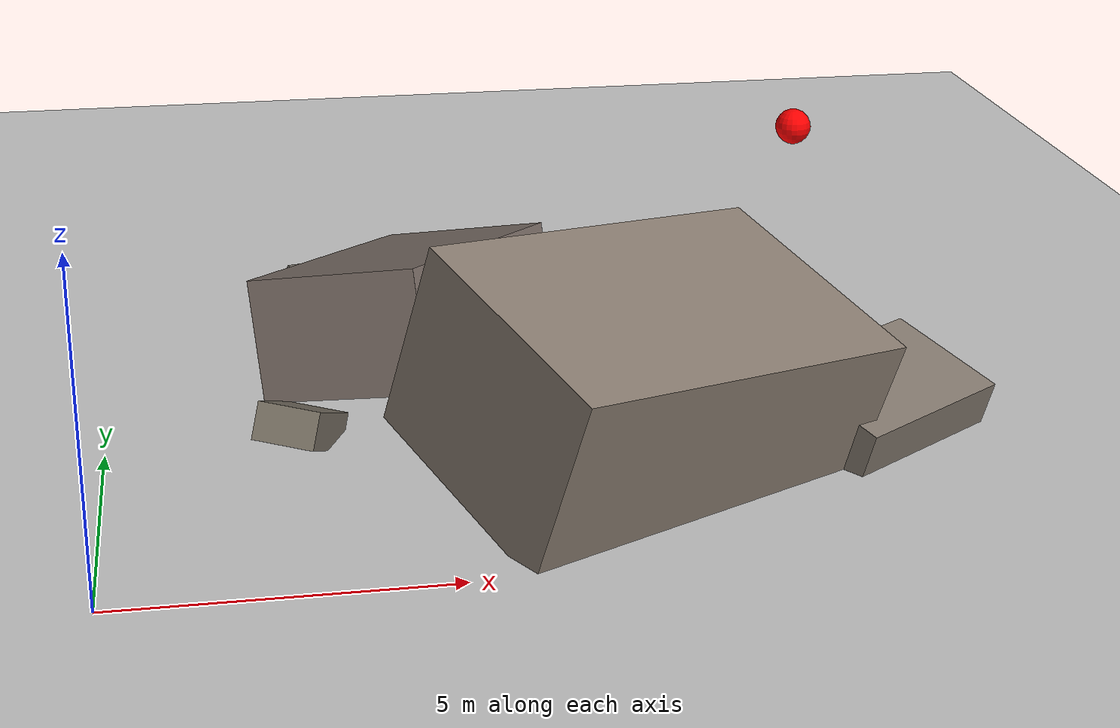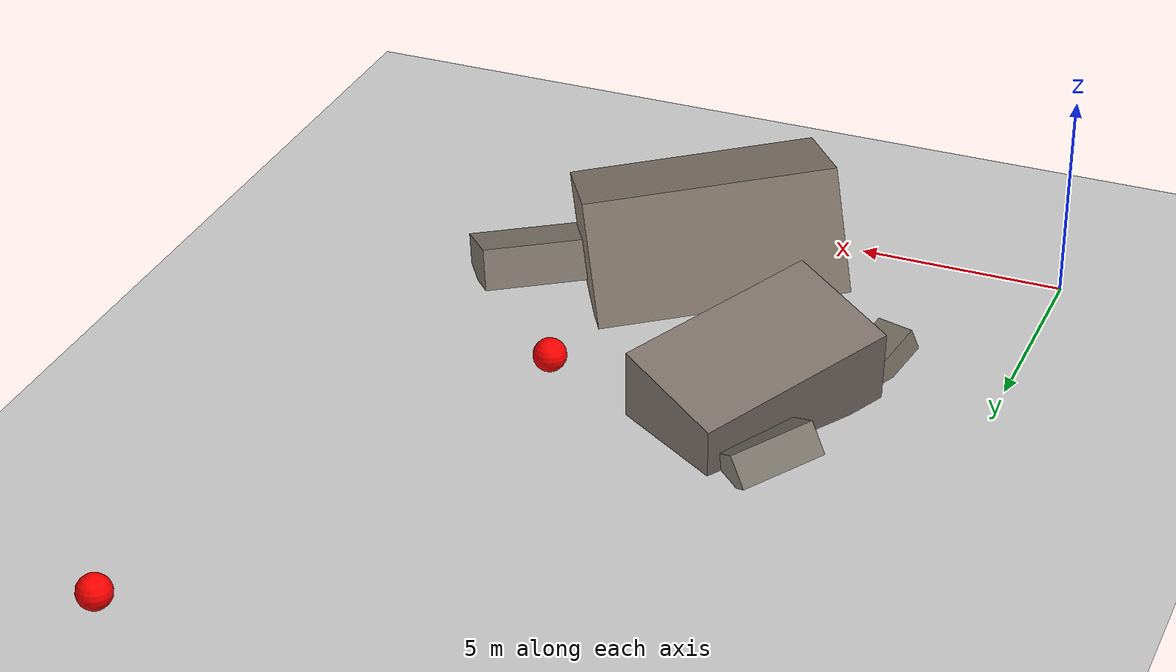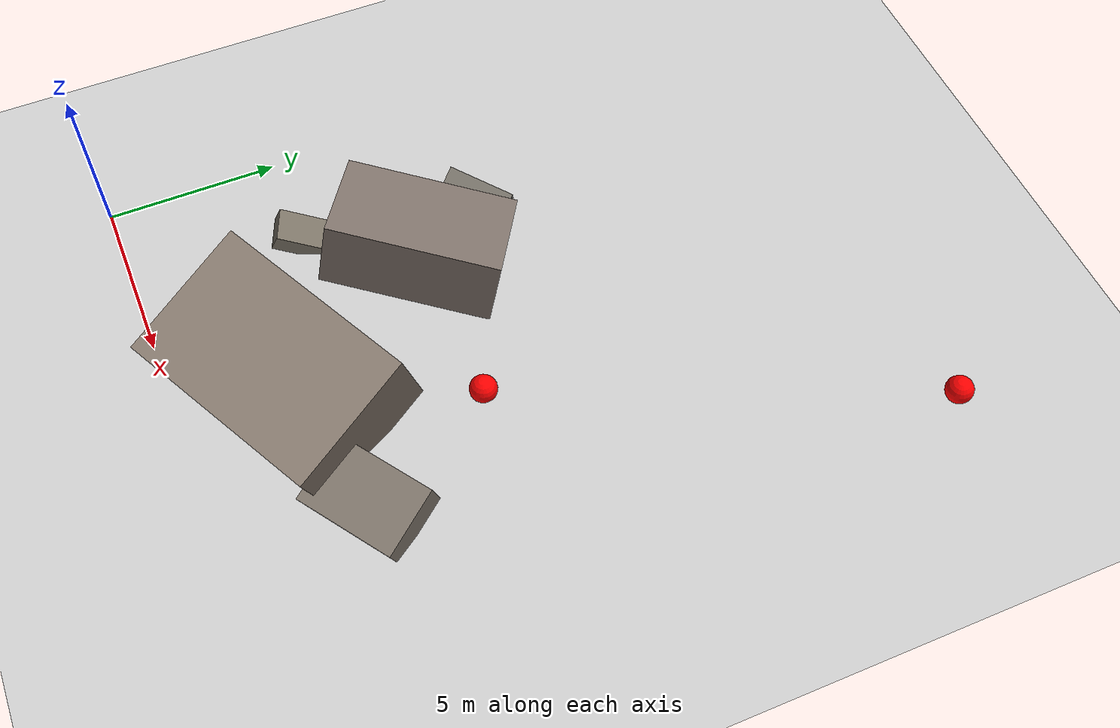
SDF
<?xml version="1.0" ?>
<sdf version="1.6">
  <world name="disaster_world">

    <!-- ===== Lighting ===== -->
    <include>
      <uri>model://sun</uri>
    </include>

    <!-- ===== Ground ===== -->
    <include>
      <uri>model://ground_plane</uri>
    </include>

    <!-- ===== Collapsed building 1 ===== -->
    <model name="collapsed_building_1">
      <static>true</static>
      <link name="link">
        <pose>8 3 1.5 0.3 0.1 0.5</pose>
        <collision name="col">
          <geometry><box><size>6 4 3</size></box></geometry>
        </collision>
        <visual name="vis">
          <geometry><box><size>6 4 3</size></box></geometry>
          <material>
            <ambient>0.5 0.45 0.4 1</ambient>
            <diffuse>0.55 0.5 0.45 1</diffuse>
          </material>
        </visual>
      </link>
    </model>

    <!-- ===== Collapsed building 2 ===== -->
    <model name="collapsed_building_2">
      <static>true</static>
      <link name="link">
        <!-- FIX: moved from (-6, 8) to (5, 8) — inside the 0-30 search grid -->
        <pose>5 8 1.0 -0.2 0.15 1.0</pose>
        <collision name="col">
          <geometry><box><size>5 3 2</size></box></geometry>
        </collision>
        <visual name="vis">
          <geometry><box><size>5 3 2</size></box></geometry>
          <material>
            <ambient>0.45 0.4 0.38 1</ambient>
            <diffuse>0.5 0.45 0.42 1</diffuse>
          </material>
        </visual>
      </link>
    </model>

    <!-- ===== Rubble block 1 ===== -->
    <model name="rubble_1">
      <static>true</static>
      <link name="link">
        <pose>4 10 0.4 0.5 0.2 0.8</pose>
        <collision name="col">
          <geometry><box><size>2 1.5 0.8</size></box></geometry>
        </collision>
        <visual name="vis">
          <geometry><box><size>2 1.5 0.8</size></box></geometry>
          <material><ambient>0.5 0.48 0.44 1</ambient></material>
        </visual>
      </link>
    </model>

    <!-- ===== Rubble block 2 ===== -->
    <model name="rubble_2">
      <static>true</static>
      <link name="link">
        <!-- FIX: moved from (-3, -5) to (3, 5) — inside the 0-30 search grid -->
        <pose>3 5 0.3 0.1 0.4 1.2</pose>
        <collision name="col">
          <geometry><box><size>1.5 1 0.6</size></box></geometry>
        </collision>
        <visual name="vis">
          <geometry><box><size>1.5 1 0.6</size></box></geometry>
          <material><ambient>0.48 0.45 0.4 1</ambient></material>
        </visual>
      </link>
    </model>

    <!-- ===== Rubble block 3 ===== -->
    <model name="rubble_3">
      <static>true</static>
      <link name="link">
        <pose>12 4 0.5 0.3 0.0 0.6</pose>
        <collision name="col">
          <geometry><box><size>3 2 1</size></box></geometry>
        </collision>
        <visual name="vis">
          <geometry><box><size>3 2 1</size></box></geometry>
          <material><ambient>0.52 0.48 0.44 1</ambient></material>
        </visual>
      </link>
    </model>

    <!-- ===== Victim 1 (bright red sphere — detected by OpenCV) ===== -->
    <!--
      Position (10, 8) — inside 0-30 grid, drone will pass over it.
      emissive value ensures it stays visibly red even in shadow.
    -->
    <model name="victim_1">
      <static>true</static>
      <link name="link">
        <pose>10 8 0.4 0 0 0</pose>
        <collision name="col">
          <geometry><sphere><radius>0.4</radius></sphere></geometry>
        </collision>
        <visual name="vis">
          <geometry><sphere><radius>0.4</radius></sphere></geometry>
          <material>
            <ambient>1.0 0.0 0.0 1</ambient>
            <diffuse>1.0 0.0 0.0 1</diffuse>
            <specular>0.5 0.0 0.0 1</specular>
            <emissive>0.3 0.0 0.0 1</emissive>
          </material>
        </visual>
      </link>
    </model>

    <!-- ===== Victim 2 ===== -->
    <!--
      FIX: Was at (-5, 15) — completely OUTSIDE the 0-30 search grid.
           Drone would never fly there → victim never detected.
           Moved to (15, 20) — well inside the grid.
    -->
    <model name="victim_2">
      <static>true</static>
      <link name="link">
        <pose>15 20 0.4 0 0 0</pose>
        <collision name="col">
          <geometry><sphere><radius>0.4</radius></sphere></geometry>
        </collision>
        <visual name="vis">
          <geometry><sphere><radius>0.4</radius></sphere></geometry>
          <material>
            <ambient>1.0 0.0 0.0 1</ambient>
            <diffuse>1.0 0.0 0.0 1</diffuse>
            <specular>0.5 0.0 0.0 1</specular>
            <emissive>0.3 0.0 0.0 1</emissive>
          </material>
        </visual>
      </link>
    </model>

    <!-- ===== Physics ===== -->
    <physics type="ode">
      <real_time_update_rate>1000</real_time_update_rate>
      <max_step_size>0.001</max_step_size>
    </physics>

  </world>
</sdf>
